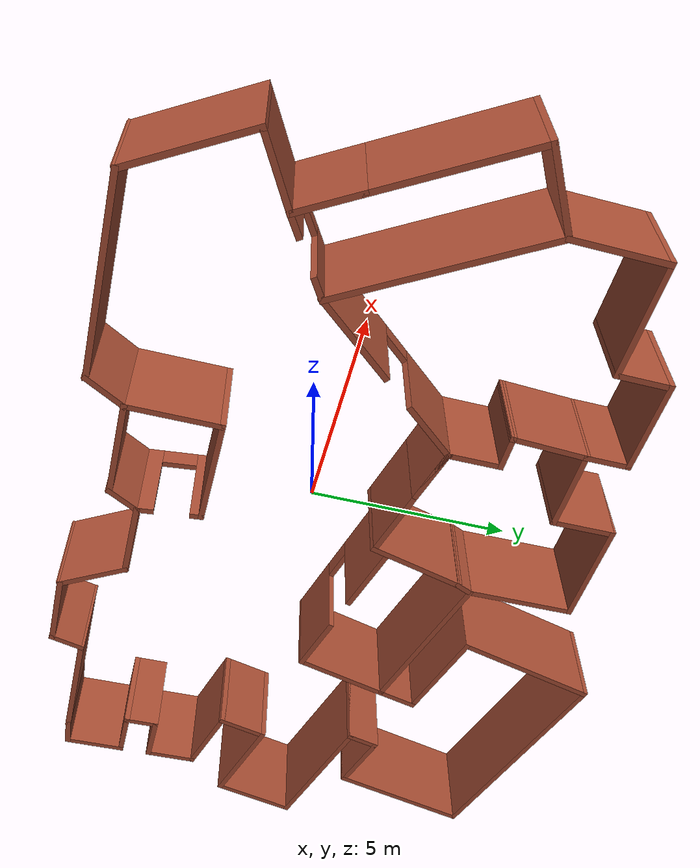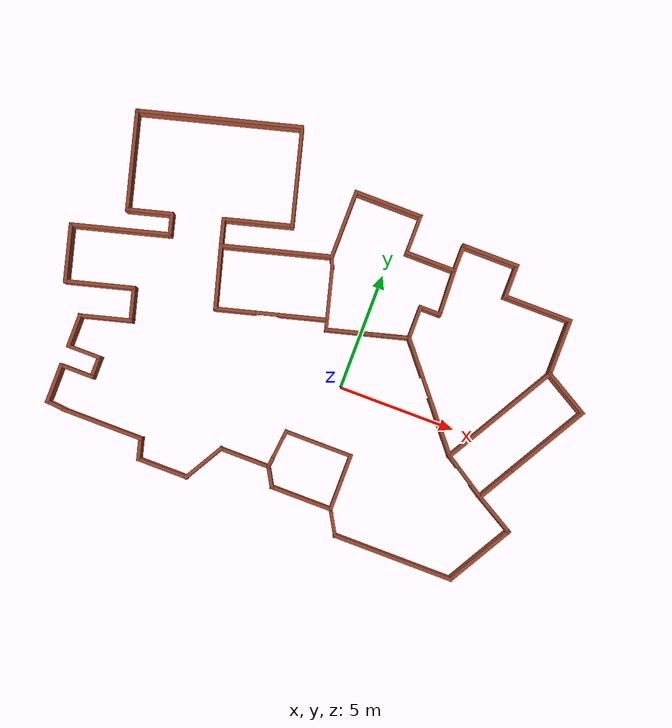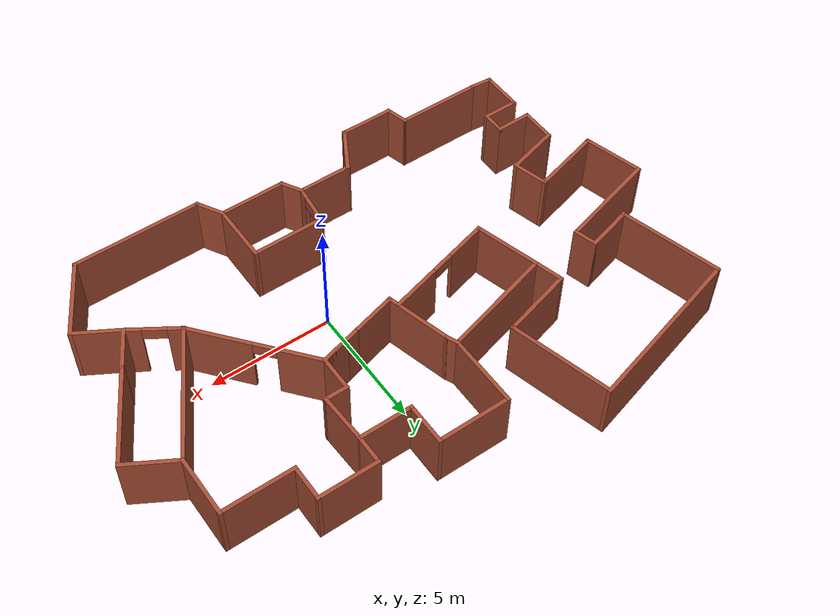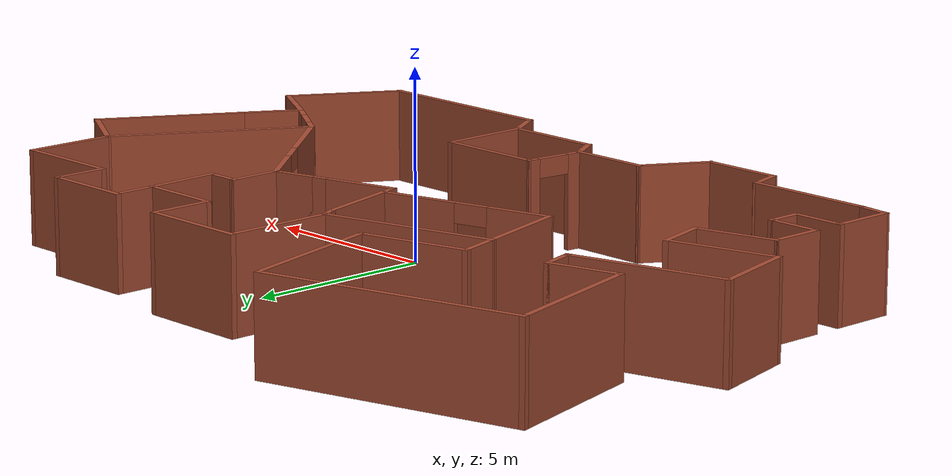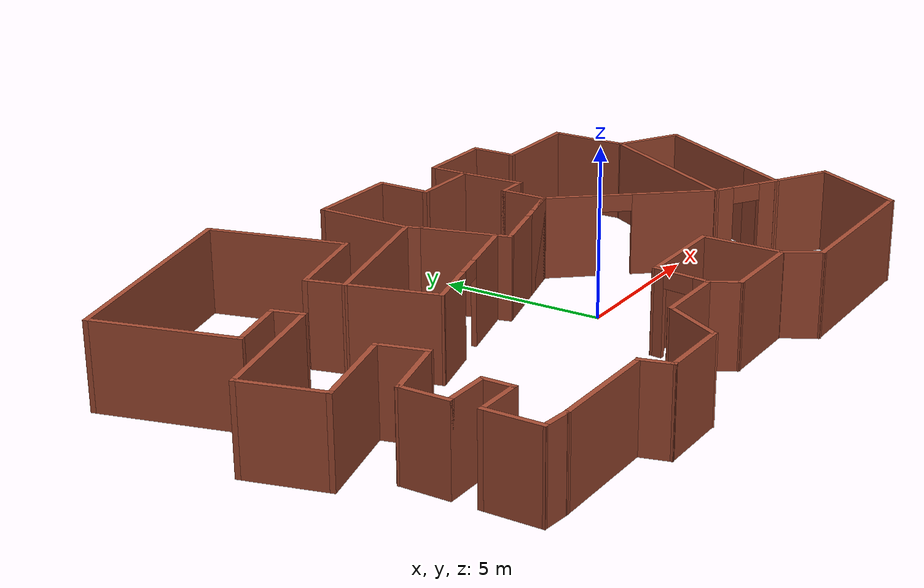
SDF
<?xml version='1.0'?>
<sdf version='1.6'>
  <model name='test_building'>
    <pose frame=''>-1.545 1.82792 0 0 -0 0</pose>
    <link name='Wall_1'>
      <collision name='Wall_1_Collision'>
        <geometry>
          <box>
            <size>3.5 0.15 2.5</size>
          </box>
        </geometry>
        <pose frame=''>0 0 1.25 0 -0 0</pose>
      </collision>
      <visual name='Wall_1_Visual'>
        <pose frame=''>0 0 1.25 0 -0 0</pose>
        <geometry>
          <box>
            <size>3.5 0.15 2.5</size>
          </box>
        </geometry>
        <material>
          <script>
            <uri>file://media/materials/scripts/gazebo.material</uri>
            <name>Gazebo/Bricks</name>
          </script>
          <ambient>1 1 1 1</ambient>
        </material>
      </visual>
      <pose frame=''>-7.11632 -6.73676 0 0 -0 0</pose>
    </link>
    <link name='Wall_10'>
      <collision name='Wall_10_Collision'>
        <geometry>
          <box>
            <size>3.25 0.15 2.5</size>
          </box>
        </geometry>
        <pose frame=''>0 0 1.25 0 -0 0</pose>
      </collision>
      <visual name='Wall_10_Visual'>
        <pose frame=''>0 0 1.25 0 -0 0</pose>
        <geometry>
          <box>
            <size>3.25 0.15 2.5</size>
          </box>
        </geometry>
        <material>
          <script>
            <uri>file://media/materials/scripts/gazebo.material</uri>
            <name>Gazebo/Bricks</name>
          </script>
          <ambient>1 1 1 1</ambient>
        </material>
      </visual>
      <pose frame=''>9.35368 -6.30206 0 0 -0 1.0472</pose>
    </link>
    <link name='Wall_11'>
      <collision name='Wall_11_Collision'>
        <geometry>
          <box>
            <size>2 0.15 2.5</size>
          </box>
        </geometry>
        <pose frame=''>0 0 1.25 0 -0 0</pose>
      </collision>
      <visual name='Wall_11_Visual'>
        <pose frame=''>0 0 1.25 0 -0 0</pose>
        <geometry>
          <box>
            <size>2 0.15 2.5</size>
          </box>
        </geometry>
        <material>
          <script>
            <uri>file://media/materials/scripts/gazebo.material</uri>
            <name>Gazebo/Bricks</name>
          </script>
          <ambient>1 1 1 1</ambient>
        </material>
      </visual>
      <pose frame=''>9.3276 -4.49722 0 0 -0 2.61799</pose>
    </link>
    <link name='Wall_12'>
      <collision name='Wall_12_Collision'>
        <geometry>
          <box>
            <size>1.75 0.15 2.5</size>
          </box>
        </geometry>
        <pose frame=''>0 0 1.25 0 -0 0</pose>
      </collision>
      <visual name='Wall_12_Visual'>
        <pose frame=''>0 0 1.25 0 -0 0</pose>
        <geometry>
          <box>
            <size>1.75 0.15 2.5</size>
          </box>
        </geometry>
        <material>
          <script>
            <uri>file://media/materials/scripts/gazebo.material</uri>
            <name>Gazebo/Bricks</name>
          </script>
          <ambient>1 1 1 1</ambient>
        </material>
      </visual>
      <pose frame=''>8.92653 -3.3419 0 0 -0 1.0472</pose>
    </link>
    <link name='Wall_13'>
      <collision name='Wall_13_Collision'>
        <geometry>
          <box>
            <size>4 0.15 2.5</size>
          </box>
        </geometry>
        <pose frame=''>0 0 1.25 0 -0 0</pose>
      </collision>
      <visual name='Wall_13_Visual'>
        <pose frame=''>0 0 1.25 0 -0 0</pose>
        <geometry>
          <box>
            <size>4 0.15 2.5</size>
          </box>
        </geometry>
        <material>
          <script>
            <uri>file://media/materials/scripts/gazebo.material</uri>
            <name>Gazebo/Bricks</name>
          </script>
          <ambient>1 1 1 1</ambient>
        </material>
      </visual>
      <pose frame=''>10.289 -0.981983 0 0 -0 1.0472</pose>
    </link>
    <link name='Wall_14'>
      <collision name='Wall_14_Collision'>
        <geometry>
          <box>
            <size>2.25 0.15 2.5</size>
          </box>
        </geometry>
        <pose frame=''>0 0 1.25 0 -0 0</pose>
      </collision>
      <visual name='Wall_14_Visual'>
        <pose frame=''>0 0 1.25 0 -0 0</pose>
        <geometry>
          <box>
            <size>2.25 0.15 2.5</size>
          </box>
        </geometry>
        <material>
          <script>
            <uri>file://media/materials/scripts/gazebo.material</uri>
            <name>Gazebo/Bricks</name>
          </script>
          <ambient>1 1 1 1</ambient>
        </material>
      </visual>
      <pose frame=''>10.3422 1.21012 0 0 -0 2.61799</pose>
    </link>
    <link name='Wall_15'>
      <collision name='Wall_15_Collision'>
        <geometry>
          <box>
            <size>2.5 0.15 2.5</size>
          </box>
        </geometry>
        <pose frame=''>0 0 1.25 0 -0 0</pose>
      </collision>
      <visual name='Wall_15_Visual'>
        <pose frame=''>0 0 1.25 0 -0 0</pose>
        <geometry>
          <box>
            <size>2.5 0.15 2.5</size>
          </box>
        </geometry>
        <material>
          <script>
            <uri>file://media/materials/scripts/gazebo.material</uri>
            <name>Gazebo/Bricks</name>
          </script>
          <ambient>1 1 1 1</ambient>
        </material>
      </visual>
      <pose frame=''>9.43288 2.91012 0 0 -0 1.5708</pose>
    </link>
    <link name='Wall_16'>
      <collision name='Wall_16_Collision'>
        <geometry>
          <box>
            <size>3 0.15 2.5</size>
          </box>
        </geometry>
        <pose frame=''>0 0 1.25 0 -0 0</pose>
      </collision>
      <visual name='Wall_16_Visual'>
        <pose frame=''>0 0 1.25 0 -0 0</pose>
        <geometry>
          <box>
            <size>3 0.15 2.5</size>
          </box>
        </geometry>
        <material>
          <script>
            <uri>file://media/materials/scripts/gazebo.material</uri>
            <name>Gazebo/Bricks</name>
          </script>
          <ambient>1 1 1 1</ambient>
        </material>
      </visual>
      <pose frame=''>8.00788 4.08512 0 0 -0 3.14159</pose>
    </link>
    <link name='Wall_17'>
      <collision name='Wall_17_Collision'>
        <geometry>
          <box>
            <size>1.5 0.15 2.5</size>
          </box>
        </geometry>
        <pose frame=''>0 0 1.25 0 -0 0</pose>
      </collision>
      <visual name='Wall_17_Visual'>
        <pose frame=''>0 0 1.25 0 -0 0</pose>
        <geometry>
          <box>
            <size>1.5 0.15 2.5</size>
          </box>
        </geometry>
        <material>
          <script>
            <uri>file://media/materials/scripts/gazebo.material</uri>
            <name>Gazebo/Bricks</name>
          </script>
          <ambient>1 1 1 1</ambient>
        </material>
      </visual>
      <pose frame=''>6.58288 4.76012 0 0 -0 1.5708</pose>
    </link>
    <link name='Wall_18'>
      <collision name='Wall_18_Collision'>
        <geometry>
          <box>
            <size>2.5 0.15 2.5</size>
          </box>
        </geometry>
        <pose frame=''>0 0 1.25 0 -0 0</pose>
      </collision>
      <visual name='Wall_18_Visual'>
        <pose frame=''>0 0 1.25 0 -0 0</pose>
        <geometry>
          <box>
            <size>2.5 0.15 2.5</size>
          </box>
        </geometry>
        <material>
          <script>
            <uri>file://media/materials/scripts/gazebo.material</uri>
            <name>Gazebo/Bricks</name>
          </script>
          <ambient>1 1 1 1</ambient>
        </material>
      </visual>
      <pose frame=''>5.40788 5.43512 0 0 -0 3.14159</pose>
    </link>
    <link name='Wall_19'>
      <collision name='Wall_19_Collision'>
        <geometry>
          <box>
            <size>1.25 0.15 2.5</size>
          </box>
        </geometry>
        <pose frame=''>0 0 1.25 0 -0 0</pose>
      </collision>
      <visual name='Wall_19_Visual'>
        <pose frame=''>0 0 1.25 0 -0 0</pose>
        <geometry>
          <box>
            <size>1.25 0.15 2.5</size>
          </box>
        </geometry>
        <material>
          <script>
            <uri>file://media/materials/scripts/gazebo.material</uri>
            <name>Gazebo/Bricks</name>
          </script>
          <ambient>1 1 1 1</ambient>
        </material>
      </visual>
      <pose frame=''>4.23288 4.88512 0 0 0 -1.5708</pose>
    </link>
    <link name='Wall_2'>
      <collision name='Wall_2_Collision'>
        <geometry>
          <box>
            <size>1 0.15 2.5</size>
          </box>
        </geometry>
        <pose frame=''>0 0 1.25 0 -0 0</pose>
      </collision>
      <visual name='Wall_2_Visual'>
        <pose frame=''>0 0 1.25 0 -0 0</pose>
        <geometry>
          <box>
            <size>1 0.15 2.5</size>
          </box>
        </geometry>
        <material>
          <script>
            <uri>file://media/materials/scripts/gazebo.material</uri>
            <name>Gazebo/Bricks</name>
          </script>
          <ambient>1 1 1 1</ambient>
        </material>
      </visual>
      <pose frame=''>-5.33132 -7.14728 0 0 0 -1.309</pose>
    </link>
    <link name='Wall_20'>
      <collision name='Wall_20_Collision'>
        <geometry>
          <box>
            <size>2.25 0.15 2.5</size>
          </box>
        </geometry>
        <pose frame=''>0 0 1.25 0 -0 0</pose>
      </collision>
      <visual name='Wall_20_Visual'>
        <pose frame=''>0 0 1.25 0 -0 0</pose>
        <geometry>
          <box>
            <size>2.25 0.15 2.5</size>
          </box>
        </geometry>
        <material>
          <script>
            <uri>file://media/materials/scripts/gazebo.material</uri>
            <name>Gazebo/Bricks</name>
          </script>
          <ambient>1 1 1 1</ambient>
        </material>
      </visual>
      <pose frame=''>3.18288 4.33512 0 0 -0 3.14159</pose>
    </link>
    <link name='Wall_21'>
      <collision name='Wall_21_Collision'>
        <geometry>
          <box>
            <size>1.75 0.15 2.5</size>
          </box>
        </geometry>
        <pose frame=''>0 0 1.25 0 -0 0</pose>
      </collision>
      <visual name='Wall_21_Visual'>
        <pose frame=''>0 0 1.25 0 -0 0</pose>
        <geometry>
          <box>
            <size>1.75 0.15 2.5</size>
          </box>
        </geometry>
        <material>
          <script>
            <uri>file://media/materials/scripts/gazebo.material</uri>
            <name>Gazebo/Bricks</name>
          </script>
          <ambient>1 1 1 1</ambient>
        </material>
      </visual>
      <pose frame=''>2.13288 5.13512 0 0 -0 1.5708</pose>
    </link>
    <link name='Wall_22'>
      <collision name='Wall_22_Collision'>
        <geometry>
          <box>
            <size>3 0.15 2.5</size>
          </box>
        </geometry>
        <pose frame=''>0 0 1.25 0 -0 0</pose>
      </collision>
      <visual name='Wall_22_Visual'>
        <pose frame=''>0 0 1.25 0 -0 0</pose>
        <geometry>
          <box>
            <size>3 0.15 2.5</size>
          </box>
        </geometry>
        <material>
          <script>
            <uri>file://media/materials/scripts/gazebo.material</uri>
            <name>Gazebo/Bricks</name>
          </script>
          <ambient>1 1 1 1</ambient>
        </material>
      </visual>
      <pose frame=''>0.707876 5.93512 0 0 -0 3.14159</pose>
    </link>
    <link name='Wall_23'>
      <collision name='Wall_23_Collision'>
        <geometry>
          <box>
            <size>3 0.15 2.5</size>
          </box>
        </geometry>
        <pose frame=''>0 0 1.25 0 -0 0</pose>
      </collision>
      <visual name='Wall_23_Visual'>
        <pose frame=''>0 0 1.25 0 -0 0</pose>
        <geometry>
          <box>
            <size>3 0.15 2.5</size>
          </box>
        </geometry>
        <material>
          <script>
            <uri>file://media/materials/scripts/gazebo.material</uri>
            <name>Gazebo/Bricks</name>
          </script>
          <ambient>1 1 1 1</ambient>
        </material>
      </visual>
      <pose frame=''>-0.717124 4.51012 0 0 0 -1.5708</pose>
    </link>
    <link name='Wall_24'>
      <collision name='Wall_24_Collision'>
        <geometry>
          <box>
            <size>4.75 0.15 2.5</size>
          </box>
        </geometry>
        <pose frame=''>0 0 1.25 0 -0 0</pose>
      </collision>
      <visual name='Wall_24_Visual'>
        <pose frame=''>0 0 1.25 0 -0 0</pose>
        <geometry>
          <box>
            <size>4.75 0.15 2.5</size>
          </box>
        </geometry>
        <material>
          <script>
            <uri>file://media/materials/scripts/gazebo.material</uri>
            <name>Gazebo/Bricks</name>
          </script>
          <ambient>1 1 1 1</ambient>
        </material>
      </visual>
      <pose frame=''>-2.93875 2.48983 0 0 0 -2.87979</pose>
    </link>
    <link name='Wall_25'>
      <collision name='Wall_25_Collision'>
        <geometry>
          <box>
            <size>1.25 0.15 2.5</size>
          </box>
        </geometry>
        <pose frame=''>0 0 1.25 0 -0 0</pose>
      </collision>
      <visual name='Wall_25_Visual'>
        <pose frame=''>0 0 1.25 0 -0 0</pose>
        <geometry>
          <box>
            <size>1.25 0.15 2.5</size>
          </box>
        </geometry>
        <material>
          <script>
            <uri>file://media/materials/scripts/gazebo.material</uri>
            <name>Gazebo/Bricks</name>
          </script>
          <ambient>1 1 1 1</ambient>
        </material>
      </visual>
      <pose frame=''>-5.30273 2.42581 0 0 -0 1.8326</pose>
    </link>
    <link name='Wall_26'>
      <collision name='Wall_26_Collision'>
        <geometry>
          <box>
            <size>3 0.15 2.5</size>
          </box>
        </geometry>
        <pose frame=''>0 0 1.25 0 -0 0</pose>
      </collision>
      <visual name='Wall_26_Visual'>
        <pose frame=''>0 0 1.25 0 -0 0</pose>
        <geometry>
          <box>
            <size>3 0.15 2.5</size>
          </box>
        </geometry>
        <material>
          <script>
            <uri>file://media/materials/scripts/gazebo.material</uri>
            <name>Gazebo/Bricks</name>
          </script>
          <ambient>1 1 1 1</ambient>
        </material>
      </visual>
      <pose frame=''>-4.06864 3.32588 0 0 -0 0.261799</pose>
    </link>
    <link name='Wall_27'>
      <collision name='Wall_27_Collision'>
        <geometry>
          <box>
            <size>4.25 0.15 2.5</size>
          </box>
        </geometry>
        <pose frame=''>0 0 1.25 0 -0 0</pose>
      </collision>
      <visual name='Wall_27_Visual'>
        <pose frame=''>0 0 1.25 0 -0 0</pose>
        <geometry>
          <box>
            <size>4.25 0.15 2.5</size>
          </box>
        </geometry>
        <material>
          <script>
            <uri>file://media/materials/scripts/gazebo.material</uri>
            <name>Gazebo/Bricks</name>
          </script>
          <ambient>1 1 1 1</ambient>
        </material>
      </visual>
      <pose frame=''>-3.22277 5.67485 0 0 -0 1.8326</pose>
    </link>
    <link name='Wall_28'>
      <collision name='Wall_28_Collision'>
        <geometry>
          <box>
            <size>7 0.15 2.5</size>
          </box>
        </geometry>
        <pose frame=''>0 0 1.25 0 -0 0</pose>
      </collision>
      <visual name='Wall_28_Visual'>
        <pose frame=''>0 0 1.25 0 -0 0</pose>
        <geometry>
          <box>
            <size>7 0.15 2.5</size>
          </box>
        </geometry>
        <material>
          <script>
            <uri>file://media/materials/scripts/gazebo.material</uri>
            <name>Gazebo/Bricks</name>
          </script>
          <ambient>1 1 1 1</ambient>
        </material>
      </visual>
      <pose frame=''>-7.06165 6.76854 0 0 0 -2.87979</pose>
    </link>
    <link name='Wall_29'>
      <collision name='Wall_29_Collision'>
        <geometry>
          <box>
            <size>4.25 0.15 2.5</size>
          </box>
        </geometry>
        <pose frame=''>0 0 1.25 0 -0 0</pose>
      </collision>
      <visual name='Wall_29_Visual'>
        <pose frame=''>0 0 1.25 0 -0 0</pose>
        <geometry>
          <box>
            <size>4.25 0.15 2.5</size>
          </box>
        </geometry>
        <material>
          <script>
            <uri>file://media/materials/scripts/gazebo.material</uri>
            <name>Gazebo/Bricks</name>
          </script>
          <ambient>1 1 1 1</ambient>
        </material>
      </visual>
      <pose frame=''>-9.83937 3.90194 0 0 0 -1.309</pose>
    </link>
    <link name='Wall_3'>
      <collision name='Wall_3_Collision'>
        <geometry>
          <box>
            <size>2.25 0.15 2.5</size>
          </box>
        </geometry>
        <pose frame=''>0 0 1.25 0 -0 0</pose>
      </collision>
      <visual name='Wall_3_Visual'>
        <pose frame=''>0 0 1.25 0 -0 0</pose>
        <geometry>
          <box>
            <size>2.25 0.15 2.5</size>
          </box>
        </geometry>
        <material>
          <script>
            <uri>file://media/materials/scripts/gazebo.material</uri>
            <name>Gazebo/Bricks</name>
          </script>
          <ambient>1 1 1 1</ambient>
        </material>
      </visual>
      <pose frame=''>-4.17132 -7.5578 0 0 -0 0</pose>
    </link>
    <link name='Wall_30'>
      <collision name='Wall_30_Collision'>
        <geometry>
          <box>
            <size>2 0.15 2.5</size>
          </box>
        </geometry>
        <pose frame=''>0 0 1.25 0 -0 0</pose>
      </collision>
      <visual name='Wall_30_Visual'>
        <pose frame=''>0 0 1.25 0 -0 0</pose>
        <geometry>
          <box>
            <size>2 0.15 2.5</size>
          </box>
        </geometry>
        <material>
          <script>
            <uri>file://media/materials/scripts/gazebo.material</uri>
            <name>Gazebo/Bricks</name>
          </script>
          <ambient>1 1 1 1</ambient>
        </material>
      </visual>
      <pose frame=''>-8.41531 2.1612 0 0 -0 0.261799</pose>
    </link>
    <link name='Wall_31'>
      <collision name='Wall_31_Collision'>
        <geometry>
          <box>
            <size>1 0.15 2.5</size>
          </box>
        </geometry>
        <pose frame=''>0 0 1.25 0 -0 0</pose>
      </collision>
      <visual name='Wall_31_Visual'>
        <pose frame=''>0 0 1.25 0 -0 0</pose>
        <geometry>
          <box>
            <size>1 0.15 2.5</size>
          </box>
        </geometry>
        <material>
          <script>
            <uri>file://media/materials/scripts/gazebo.material</uri>
            <name>Gazebo/Bricks</name>
          </script>
          <ambient>1 1 1 1</ambient>
        </material>
      </visual>
      <pose frame=''>-7.41183 1.99009 0 0 0 -1.309</pose>
    </link>
    <link name='Wall_32'>
      <collision name='Wall_32_Collision'>
        <geometry>
          <box>
            <size>4.25 0.15 2.5</size>
          </box>
        </geometry>
        <pose frame=''>0 0 1.25 0 -0 0</pose>
      </collision>
      <visual name='Wall_32_Visual'>
        <pose frame=''>0 0 1.25 0 -0 0</pose>
        <geometry>
          <box>
            <size>4.25 0.15 2.5</size>
          </box>
        </geometry>
        <material>
          <script>
            <uri>file://media/materials/scripts/gazebo.material</uri>
            <name>Gazebo/Bricks</name>
          </script>
          <ambient>1 1 1 1</ambient>
        </material>
      </visual>
      <pose frame=''>-9.28198 1.04899 0 0 0 -2.87979</pose>
    </link>
    <link name='Wall_33'>
      <collision name='Wall_33_Collision'>
        <geometry>
          <box>
            <size>2.5 0.15 2.5</size>
          </box>
        </geometry>
        <pose frame=''>0 0 1.25 0 -0 0</pose>
      </collision>
      <visual name='Wall_33_Visual'>
        <pose frame=''>0 0 1.25 0 -0 0</pose>
        <geometry>
          <box>
            <size>2.5 0.15 2.5</size>
          </box>
        </geometry>
        <material>
          <script>
            <uri>file://media/materials/scripts/gazebo.material</uri>
            <name>Gazebo/Bricks</name>
          </script>
          <ambient>1 1 1 1</ambient>
        </material>
      </visual>
      <pose frame=''>-10.958 -0.616552 0 0 0 -1.309</pose>
    </link>
    <link name='Wall_34'>
      <collision name='Wall_34_Collision'>
        <geometry>
          <box>
            <size>3 0.15 2.5</size>
          </box>
        </geometry>
        <pose frame=''>0 0 1.25 0 -0 0</pose>
      </collision>
      <visual name='Wall_34_Visual'>
        <pose frame=''>0 0 1.25 0 -0 0</pose>
        <geometry>
          <box>
            <size>3 0.15 2.5</size>
          </box>
        </geometry>
        <material>
          <script>
            <uri>file://media/materials/scripts/gazebo.material</uri>
            <name>Gazebo/Bricks</name>
          </script>
          <ambient>1 1 1 1</ambient>
        </material>
      </visual>
      <pose frame=''>-9.27745 -1.3827 0 0 -0 0.261799</pose>
    </link>
    <link name='Wall_35'>
      <collision name='Wall_35_Collision'>
        <geometry>
          <box>
            <size>1.5 0.15 2.5</size>
          </box>
        </geometry>
        <pose frame=''>0 0 1.25 0 -0 0</pose>
      </collision>
      <visual name='Wall_35_Visual'>
        <pose frame=''>0 0 1.25 0 -0 0</pose>
        <geometry>
          <box>
            <size>1.5 0.15 2.5</size>
          </box>
        </geometry>
        <material>
          <script>
            <uri>file://media/materials/scripts/gazebo.material</uri>
            <name>Gazebo/Bricks</name>
          </script>
          <ambient>1 0.764706 0.305882 1</ambient>
        </material>
      </visual>
      <pose frame=''>-7.72631 -1.66588 0 0 0 -1.309</pose>
    </link>
    <link name='Wall_36'>
      <collision name='Wall_36_Collision'>
        <geometry>
          <box>
            <size>2.25 0.15 2.5</size>
          </box>
        </geometry>
        <pose frame=''>0 0 1.25 0 -0 0</pose>
      </collision>
      <visual name='Wall_36_Visual'>
        <pose frame=''>0 0 1.25 0 -0 0</pose>
        <geometry>
          <box>
            <size>2.25 0.15 2.5</size>
          </box>
        </geometry>
        <material>
          <script>
            <uri>file://media/materials/scripts/gazebo.material</uri>
            <name>Gazebo/Bricks</name>
          </script>
          <ambient>1 1 1 1</ambient>
        </material>
      </visual>
      <pose frame=''>-8.56583 -2.58964 0 0 0 -2.87979</pose>
    </link>
    <link name='Wall_37'>
      <collision name='Wall_37_Collision'>
        <geometry>
          <box>
            <size>1.5 0.15 2.5</size>
          </box>
        </geometry>
        <pose frame=''>0 0 1.25 0 -0 0</pose>
      </collision>
      <visual name='Wall_37_Visual'>
        <pose frame=''>0 0 1.25 0 -0 0</pose>
        <geometry>
          <box>
            <size>1.5 0.15 2.5</size>
          </box>
        </geometry>
        <material>
          <script>
            <uri>file://media/materials/scripts/gazebo.material</uri>
            <name>Gazebo/Bricks</name>
          </script>
          <ambient>1 1 1 1</ambient>
        </material>
      </visual>
      <pose frame=''>-9.58005 -3.5364 0 0 0 -1.5708</pose>
    </link>
    <link name='Wall_38'>
      <collision name='Wall_38_Collision'>
        <geometry>
          <box>
            <size>1.5 0.15 2.5</size>
          </box>
        </geometry>
        <pose frame=''>0 0 1.25 0 -0 0</pose>
      </collision>
      <visual name='Wall_38_Visual'>
        <pose frame=''>0 0 1.25 0 -0 0</pose>
        <geometry>
          <box>
            <size>1.5 0.15 2.5</size>
          </box>
        </geometry>
        <material>
          <script>
            <uri>file://media/materials/scripts/gazebo.material</uri>
            <name>Gazebo/Bricks</name>
          </script>
          <ambient>1 1 1 1</ambient>
        </material>
      </visual>
      <pose frame=''>-8.90505 -4.2114 0 0 -0 0</pose>
    </link>
    <link name='Wall_39'>
      <collision name='Wall_39_Collision'>
        <geometry>
          <box>
            <size>1 0.15 2.5</size>
          </box>
        </geometry>
        <pose frame=''>0 0 1.25 0 -0 0</pose>
      </collision>
      <visual name='Wall_39_Visual'>
        <pose frame=''>0 0 1.25 0 -0 0</pose>
        <geometry>
          <box>
            <size>1 0.15 2.5</size>
          </box>
        </geometry>
        <material>
          <script>
            <uri>file://media/materials/scripts/gazebo.material</uri>
            <name>Gazebo/Bricks</name>
          </script>
          <ambient>1 1 1 1</ambient>
        </material>
      </visual>
      <pose frame=''>-8.23005 -4.6364 0 0 0 -1.5708</pose>
    </link>
    <link name='Wall_4'>
      <collision name='Wall_4_Collision'>
        <geometry>
          <box>
            <size>2 0.15 2.5</size>
          </box>
        </geometry>
        <pose frame=''>0 0 1.25 0 -0 0</pose>
      </collision>
      <visual name='Wall_4_Visual'>
        <pose frame=''>0 0 1.25 0 -0 0</pose>
        <geometry>
          <box>
            <size>2 0.15 2.5</size>
          </box>
        </geometry>
        <material>
          <script>
            <uri>file://media/materials/scripts/gazebo.material</uri>
            <name>Gazebo/Bricks</name>
          </script>
          <ambient>1 1 1 1</ambient>
        </material>
      </visual>
      <pose frame=''>-2.65882 -6.75673 0 0 -0 1.0472</pose>
    </link>
    <link name='Wall_40'>
      <collision name='Wall_40_Collision'>
        <geometry>
          <box>
            <size>1.5 0.15 2.5</size>
          </box>
        </geometry>
        <pose frame=''>0 0 1.25 0 -0 0</pose>
      </collision>
      <visual name='Wall_40_Visual'>
        <pose frame=''>0 0 1.25 0 -0 0</pose>
        <geometry>
          <box>
            <size>1.5 0.15 2.5</size>
          </box>
        </geometry>
        <material>
          <script>
            <uri>file://media/materials/scripts/gazebo.material</uri>
            <name>Gazebo/Bricks</name>
          </script>
          <ambient>1 1 1 1</ambient>
        </material>
      </visual>
      <pose frame=''>-8.90505 -5.0614 0 0 -0 3.14159</pose>
    </link>
    <link name='Wall_41'>
      <collision name='Wall_41_Collision'>
        <geometry>
          <box>
            <size>1.75 0.15 2.5</size>
          </box>
        </geometry>
        <pose frame=''>0 0 1.25 0 -0 0</pose>
      </collision>
      <visual name='Wall_41_Visual'>
        <pose frame=''>0 0 1.25 0 -0 0</pose>
        <geometry>
          <box>
            <size>1.75 0.15 2.5</size>
          </box>
        </geometry>
        <material>
          <script>
            <uri>file://media/materials/scripts/gazebo.material</uri>
            <name>Gazebo/Bricks</name>
          </script>
          <ambient>1 1 1 1</ambient>
        </material>
      </visual>
      <pose frame=''>-9.58005 -5.8614 0 0 0 -1.5708</pose>
    </link>
    <link name='Wall_42'>
      <collision name='Wall_42_Collision'>
        <geometry>
          <box>
            <size>0.942321 0.15 2.5</size>
          </box>
        </geometry>
        <pose frame=''>0 0 1.25 0 -0 0</pose>
      </collision>
      <visual name='Wall_42_Visual'>
        <pose frame=''>0 0 1.25 0 -0 0</pose>
        <geometry>
          <box>
            <size>0.942321 0.15 2.5</size>
          </box>
        </geometry>
        <material>
          <script>
            <uri>file://media/materials/scripts/gazebo.material</uri>
            <name>Gazebo/Bricks</name>
          </script>
          <ambient>1 1 1 1</ambient>
        </material>
      </visual>
      <pose frame=''>-9.18568 -6.69908 0 0 0 -0.095258</pose>
    </link>
    <link name='Wall_44'>
      <collision name='Wall_44_Collision'>
        <geometry>
          <box>
            <size>2.75 0.15 2.5</size>
          </box>
        </geometry>
        <pose frame=''>0 0 1.25 0 -0 0</pose>
      </collision>
      <visual name='Wall_44_Visual'>
        <pose frame=''>0 0 1.25 0 -0 0</pose>
        <geometry>
          <box>
            <size>2.75 0.15 2.5</size>
          </box>
        </geometry>
        <material>
          <script>
            <uri>file://media/materials/scripts/gazebo.material</uri>
            <name>Gazebo/Bricks</name>
          </script>
          <ambient>1 1 1 1</ambient>
        </material>
      </visual>
      <pose frame=''>-0.20626 1.44004 0 0 0 -1.309</pose>
    </link>
    <link name='Wall_45'>
      <collision name='Wall_45_Collision'>
        <geometry>
          <box>
            <size>2 0.15 2.5</size>
          </box>
        </geometry>
        <pose frame=''>0 0 1.25 0 -0 0</pose>
      </collision>
      <visual name='Wall_45_Visual'>
        <pose frame=''>0 0 1.25 0 -0 0</pose>
        <geometry>
          <box>
            <size>2 0.15 2.5</size>
          </box>
        </geometry>
        <material>
          <script>
            <uri>file://media/materials/scripts/gazebo.material</uri>
            <name>Gazebo/Bricks</name>
          </script>
          <ambient>1 1 1 1</ambient>
        </material>
      </visual>
      <pose frame=''>1.02369 0.423747 0 0 -0 0.261799</pose>
    </link>
    <link name='Wall_47'>
      <collision name='Wall_47_Collision'>
        <geometry>
          <box>
            <size>0.576642 0.15 2.5</size>
          </box>
        </geometry>
        <pose frame=''>0 0 1.25 0 -0 0</pose>
      </collision>
      <visual name='Wall_47_Visual'>
        <pose frame=''>0 0 1.25 0 -0 0</pose>
        <geometry>
          <box>
            <size>0.576642 0.15 2.5</size>
          </box>
        </geometry>
        <material>
          <script>
            <uri>file://media/materials/scripts/gazebo.material</uri>
            <name>Gazebo/Bricks</name>
          </script>
          <ambient>1 1 1 1</ambient>
        </material>
      </visual>
      <pose frame=''>-0.629925 2.89043 0 0 -0 1.99191</pose>
    </link>
    <link name='Wall_49'>
      <pose frame=''>2.68991 0.87021 0 0 -0 0.261799</pose>
      <visual name='Wall_49_Visual_0'>
        <pose frame=''>0 0 1.25 0 -0 0</pose>
        <geometry>
          <box>
            <size>1.75 0.15 2.5</size>
          </box>
        </geometry>
        <material>
          <script>
            <uri>file://media/materials/scripts/gazebo.material</uri>
            <name>Gazebo/Bricks</name>
          </script>
          <ambient>1 1 1 1</ambient>
        </material>
      </visual>
      <collision name='Wall_49_Collision_0'>
        <geometry>
          <box>
            <size>1.75 0.15 2.5</size>
          </box>
        </geometry>
        <pose frame=''>0 0 1.25 0 -0 0</pose>
      </collision>
      <visual name='Wall_49_Visual_1'>
        <pose frame=''>0.271545 0 1.25 0 -0 0</pose>
        <geometry>
          <box>
            <size>1.20691 0.15 2.5</size>
          </box>
        </geometry>
        <material>
          <script>
            <uri>file://media/materials/scripts/gazebo.material</uri>
            <name>Gazebo/Bricks</name>
          </script>
          <ambient>1 1 1 1</ambient>
        </material>
      </visual>
      <collision name='Wall_49_Collision_1'>
        <geometry>
          <box>
            <size>1.20691 0.15 2.5</size>
          </box>
        </geometry>
        <pose frame=''>0.271545 0 1.25 0 -0 0</pose>
      </collision>
    </link>
    <link name='Wall_5'>
      <collision name='Wall_5_Collision'>
        <geometry>
          <box>
            <size>2.25 0.15 2.5</size>
          </box>
        </geometry>
        <pose frame=''>0 0 1.25 0 -0 0</pose>
      </collision>
      <visual name='Wall_5_Visual'>
        <pose frame=''>0 0 1.25 0 -0 0</pose>
        <geometry>
          <box>
            <size>2.25 0.15 2.5</size>
          </box>
        </geometry>
        <material>
          <script>
            <uri>file://media/materials/scripts/gazebo.material</uri>
            <name>Gazebo/Bricks</name>
          </script>
          <ambient>1 1 1 1</ambient>
        </material>
      </visual>
      <pose frame=''>-1.14632 -5.95565 0 0 -0 0</pose>
    </link>
    <link name='Wall_50'>
      <collision name='Wall_50_Collision'>
        <geometry>
          <box>
            <size>1.5 0.15 2.5</size>
          </box>
        </geometry>
        <pose frame=''>0 0 1.25 0 -0 0</pose>
      </collision>
      <visual name='Wall_50_Visual'>
        <pose frame=''>0 0 1.25 0 -0 0</pose>
        <geometry>
          <box>
            <size>1.5 0.15 2.5</size>
          </box>
        </geometry>
        <material>
          <script>
            <uri>file://media/materials/scripts/gazebo.material</uri>
            <name>Gazebo/Bricks</name>
          </script>
          <ambient>1 1 1 1</ambient>
        </material>
      </visual>
      <pose frame=''>3.46265 1.75226 0 0 -0 1.5708</pose>
    </link>
    <link name='Wall_51'>
      <collision name='Wall_51_Collision'>
        <geometry>
          <box>
            <size>1 0.15 2.5</size>
          </box>
        </geometry>
        <pose frame=''>0 0 1.25 0 -0 0</pose>
      </collision>
      <visual name='Wall_51_Visual'>
        <pose frame=''>0 0 1.25 0 -0 0</pose>
        <geometry>
          <box>
            <size>1 0.15 2.5</size>
          </box>
        </geometry>
        <material>
          <script>
            <uri>file://media/materials/scripts/gazebo.material</uri>
            <name>Gazebo/Bricks</name>
          </script>
          <ambient>1 1 1 1</ambient>
        </material>
      </visual>
      <pose frame=''>3.88765 2.42726 0 0 -0 0</pose>
    </link>
    <link name='Wall_52'>
      <collision name='Wall_52_Collision'>
        <geometry>
          <box>
            <size>2.05952 0.15 2.5</size>
          </box>
        </geometry>
        <pose frame=''>0 0 1.25 0 -0 0</pose>
      </collision>
      <visual name='Wall_52_Visual'>
        <pose frame=''>0 0 1.25 0 -0 0</pose>
        <geometry>
          <box>
            <size>2.05952 0.15 2.5</size>
          </box>
        </geometry>
        <material>
          <script>
            <uri>file://media/materials/scripts/gazebo.material</uri>
            <name>Gazebo/Bricks</name>
          </script>
          <ambient>1 1 1 1</ambient>
        </material>
      </visual>
      <pose frame=''>4.27276 3.38119 0 0 -0 1.61258</pose>
    </link>
    <link name='Wall_54'>
      <pose frame=''>-2.23514 -0.028311 0 0 0 -2.87979</pose>
      <visual name='Wall_54_Visual_0'>
        <pose frame=''>-1.33104 0 1.25 0 -0 0</pose>
        <geometry>
          <box>
            <size>2.08791 0.15 2.5</size>
          </box>
        </geometry>
        <material>
          <script>
            <uri>file://media/materials/scripts/gazebo.material</uri>
            <name>Gazebo/Bricks</name>
          </script>
          <ambient>1 1 1 1</ambient>
        </material>
      </visual>
      <collision name='Wall_54_Collision_0'>
        <geometry>
          <box>
            <size>2.08791 0.15 2.5</size>
          </box>
        </geometry>
        <pose frame=''>-1.33104 0 1.25 0 -0 0</pose>
      </collision>
      <visual name='Wall_54_Visual_1'>
        <pose frame=''>1.49396 0 1.25 0 -0 0</pose>
        <geometry>
          <box>
            <size>1.76209 0.15 2.5</size>
          </box>
        </geometry>
        <material>
          <script>
            <uri>file://media/materials/scripts/gazebo.material</uri>
            <name>Gazebo/Bricks</name>
          </script>
          <ambient>1 1 1 1</ambient>
        </material>
      </visual>
      <collision name='Wall_54_Collision_1'>
        <geometry>
          <box>
            <size>1.76209 0.15 2.5</size>
          </box>
        </geometry>
        <pose frame=''>1.49396 0 1.25 0 -0 0</pose>
      </collision>
      <visual name='Wall_54_Visual_2'>
        <pose frame=''>0.162912 0 2.25 0 -0 0</pose>
        <geometry>
          <box>
            <size>0.9 0.15 0.5</size>
          </box>
        </geometry>
        <material>
          <script>
            <uri>file://media/materials/scripts/gazebo.material</uri>
            <name>Gazebo/Bricks</name>
          </script>
          <ambient>1 1 1 1</ambient>
        </material>
      </visual>
      <collision name='Wall_54_Collision_2'>
        <geometry>
          <box>
            <size>0.9 0.15 0.5</size>
          </box>
        </geometry>
        <pose frame=''>0.162912 0 2.25 0 -0 0</pose>
      </collision>
    </link>
    <link name='Wall_55'>
      <collision name='Wall_55_Collision'>
        <geometry>
          <box>
            <size>2.7646 0.15 2.5</size>
          </box>
        </geometry>
        <pose frame=''>0 0 1.25 0 -0 0</pose>
      </collision>
      <visual name='Wall_55_Visual'>
        <pose frame=''>0 0 1.25 0 -0 0</pose>
        <geometry>
          <box>
            <size>2.7646 0.15 2.5</size>
          </box>
        </geometry>
        <material>
          <script>
            <uri>file://media/materials/scripts/gazebo.material</uri>
            <name>Gazebo/Bricks</name>
          </script>
          <ambient>1 1 1 1</ambient>
        </material>
      </visual>
      <pose frame=''>-4.80858 0.635476 0 0 -0 1.84327</pose>
    </link>
    <link name='Wall_57'>
      <collision name='Wall_57_Collision'>
        <geometry>
          <box>
            <size>5.5 0.15 2.5</size>
          </box>
        </geometry>
        <pose frame=''>0 0 1.25 0 -0 0</pose>
      </collision>
      <visual name='Wall_57_Visual'>
        <pose frame=''>0 0 1.25 0 -0 0</pose>
        <geometry>
          <box>
            <size>5.5 0.15 2.5</size>
          </box>
        </geometry>
        <material>
          <script>
            <uri>file://media/materials/scripts/gazebo.material</uri>
            <name>Gazebo/Bricks</name>
          </script>
          <ambient>1 1 1 1</ambient>
        </material>
      </visual>
      <pose frame=''>8.09538 -0.581502 0 0 0 -2.0944</pose>
    </link>
    <link name='Wall_58'>
      <pose frame=''>5.11026 -0.910428 0 0 -0 2.26292</pose>
      <visual name='Wall_58_Visual_0'>
        <pose frame=''>-1.34859 0 1.25 0 -0 0</pose>
        <geometry>
          <box>
            <size>2.61636 0.15 2.5</size>
          </box>
        </geometry>
        <material>
          <script>
            <uri>file://media/materials/scripts/gazebo.material</uri>
            <name>Gazebo/Bricks</name>
          </script>
          <ambient>1 1 1 1</ambient>
        </material>
      </visual>
      <collision name='Wall_58_Collision_0'>
        <geometry>
          <box>
            <size>2.61636 0.15 2.5</size>
          </box>
        </geometry>
        <pose frame=''>-1.34859 0 1.25 0 -0 0</pose>
      </collision>
      <visual name='Wall_58_Visual_1'>
        <pose frame=''>1.75818 0 1.25 0 -0 0</pose>
        <geometry>
          <box>
            <size>1.79718 0.15 2.5</size>
          </box>
        </geometry>
        <material>
          <script>
            <uri>file://media/materials/scripts/gazebo.material</uri>
            <name>Gazebo/Bricks</name>
          </script>
          <ambient>1 1 1 1</ambient>
        </material>
      </visual>
      <collision name='Wall_58_Collision_1'>
        <geometry>
          <box>
            <size>1.79718 0.15 2.5</size>
          </box>
        </geometry>
        <pose frame=''>1.75818 0 1.25 0 -0 0</pose>
      </collision>
      <visual name='Wall_58_Visual_2'>
        <pose frame=''>0.409591 0 2.25 0 -0 0</pose>
        <geometry>
          <box>
            <size>0.9 0.15 0.5</size>
          </box>
        </geometry>
        <material>
          <script>
            <uri>file://media/materials/scripts/gazebo.material</uri>
            <name>Gazebo/Bricks</name>
          </script>
          <ambient>1 1 1 1</ambient>
        </material>
      </visual>
      <collision name='Wall_58_Collision_2'>
        <geometry>
          <box>
            <size>0.9 0.15 0.5</size>
          </box>
        </geometry>
        <pose frame=''>0.409591 0 2.25 0 -0 0</pose>
      </collision>
    </link>
    <link name='Wall_6'>
      <collision name='Wall_6_Collision'>
        <geometry>
          <box>
            <size>1 0.15 2.5</size>
          </box>
        </geometry>
        <pose frame=''>0 0 1.25 0 -0 0</pose>
      </collision>
      <visual name='Wall_6_Visual'>
        <pose frame=''>0 0 1.25 0 -0 0</pose>
        <geometry>
          <box>
            <size>1 0.15 2.5</size>
          </box>
        </geometry>
        <material>
          <script>
            <uri>file://media/materials/scripts/gazebo.material</uri>
            <name>Gazebo/Bricks</name>
          </script>
          <ambient>1 1 1 1</ambient>
        </material>
      </visual>
      <pose frame=''>0.116176 -6.32371 0 0 0 -1.0472</pose>
    </link>
    <link name='Wall_60'>
      <collision name='Wall_60_Collision'>
        <geometry>
          <box>
            <size>2.5 0.15 2.5</size>
          </box>
        </geometry>
        <pose frame=''>0 0 1.25 0 -0 0</pose>
      </collision>
      <visual name='Wall_60_Visual'>
        <pose frame=''>0 0 1.25 0 -0 0</pose>
        <geometry>
          <box>
            <size>2.5 0.15 2.5</size>
          </box>
        </geometry>
        <material>
          <script>
            <uri>file://media/materials/scripts/gazebo.material</uri>
            <name>Gazebo/Bricks</name>
          </script>
          <ambient>1 1 1 1</ambient>
        </material>
      </visual>
      <pose frame=''>2.92868 -5.51677 0 0 -0 1.5708</pose>
    </link>
    <link name='Wall_61'>
      <collision name='Wall_61_Collision'>
        <geometry>
          <box>
            <size>3 0.15 2.5</size>
          </box>
        </geometry>
        <pose frame=''>0 0 1.25 0 -0 0</pose>
      </collision>
      <visual name='Wall_61_Visual'>
        <pose frame=''>0 0 1.25 0 -0 0</pose>
        <geometry>
          <box>
            <size>3 0.15 2.5</size>
          </box>
        </geometry>
        <material>
          <script>
            <uri>file://media/materials/scripts/gazebo.material</uri>
            <name>Gazebo/Bricks</name>
          </script>
          <ambient>1 1 1 1</ambient>
        </material>
      </visual>
      <pose frame=''>1.50368 -4.34177 0 0 -0 3.14159</pose>
    </link>
    <link name='Wall_62'>
      <pose frame=''>-0.008824 -5.14871 0 0 0 -1.67881</pose>
      <visual name='Wall_62_Visual_0'>
        <pose frame=''>-0.70171 0 1.25 0 -0 0</pose>
        <geometry>
          <box>
            <size>0.369918 0.15 2.5</size>
          </box>
        </geometry>
        <material>
          <script>
            <uri>file://media/materials/scripts/gazebo.material</uri>
            <name>Gazebo/Bricks</name>
          </script>
          <ambient>1 1 1 1</ambient>
        </material>
      </visual>
      <collision name='Wall_62_Collision_0'>
        <geometry>
          <box>
            <size>0.369918 0.15 2.5</size>
          </box>
        </geometry>
        <pose frame=''>-0.70171 0 1.25 0 -0 0</pose>
      </collision>
      <visual name='Wall_62_Visual_1'>
        <pose frame=''>0.634959 0 1.25 0 -0 0</pose>
        <geometry>
          <box>
            <size>0.503421 0.15 2.5</size>
          </box>
        </geometry>
        <material>
          <script>
            <uri>file://media/materials/scripts/gazebo.material</uri>
            <name>Gazebo/Bricks</name>
          </script>
          <ambient>1 1 1 1</ambient>
        </material>
      </visual>
      <collision name='Wall_62_Collision_1'>
        <geometry>
          <box>
            <size>0.503421 0.15 2.5</size>
          </box>
        </geometry>
        <pose frame=''>0.634959 0 1.25 0 -0 0</pose>
      </collision>
      <visual name='Wall_62_Visual_2'>
        <pose frame=''>-0.066751 0 2.25 0 -0 0</pose>
        <geometry>
          <box>
            <size>0.9 0.15 0.5</size>
          </box>
        </geometry>
        <material>
          <script>
            <uri>file://media/materials/scripts/gazebo.material</uri>
            <name>Gazebo/Bricks</name>
          </script>
          <ambient>1 1 1 1</ambient>
        </material>
      </visual>
      <collision name='Wall_62_Collision_2'>
        <geometry>
          <box>
            <size>0.9 0.15 0.5</size>
          </box>
        </geometry>
        <pose frame=''>-0.066751 0 2.25 0 -0 0</pose>
      </collision>
    </link>
    <link name='Wall_64'>
      <pose frame=''>7.6422 -3.46642 0 0 0 -0.571182</pose>
      <visual name='Wall_64_Visual_0'>
        <pose frame=''>-0.798099 0 1.25 0 -0 0</pose>
        <geometry>
          <box>
            <size>0.656181 0.15 2.5</size>
          </box>
        </geometry>
        <material>
          <script>
            <uri>file://media/materials/scripts/gazebo.material</uri>
            <name>Gazebo/Bricks</name>
          </script>
          <ambient>1 1 1 1</ambient>
        </material>
      </visual>
      <collision name='Wall_64_Collision_0'>
        <geometry>
          <box>
            <size>0.656181 0.15 2.5</size>
          </box>
        </geometry>
        <pose frame=''>-0.798099 0 1.25 0 -0 0</pose>
      </collision>
      <visual name='Wall_64_Visual_1'>
        <pose frame=''>0.778091 0 1.25 0 -0 0</pose>
        <geometry>
          <box>
            <size>0.696198 0.15 2.5</size>
          </box>
        </geometry>
        <material>
          <script>
            <uri>file://media/materials/scripts/gazebo.material</uri>
            <name>Gazebo/Bricks</name>
          </script>
          <ambient>1 1 1 1</ambient>
        </material>
      </visual>
      <collision name='Wall_64_Collision_1'>
        <geometry>
          <box>
            <size>0.696198 0.15 2.5</size>
          </box>
        </geometry>
        <pose frame=''>0.778091 0 1.25 0 -0 0</pose>
      </collision>
      <visual name='Wall_64_Visual_2'>
        <pose frame=''>-0.020008 0 2.25 0 -0 0</pose>
        <geometry>
          <box>
            <size>0.9 0.15 0.5</size>
          </box>
        </geometry>
        <material>
          <script>
            <uri>file://media/materials/scripts/gazebo.material</uri>
            <name>Gazebo/Bricks</name>
          </script>
          <ambient>1 1 1 1</ambient>
        </material>
      </visual>
      <collision name='Wall_64_Collision_2'>
        <geometry>
          <box>
            <size>0.9 0.15 0.5</size>
          </box>
        </geometry>
        <pose frame=''>-0.020008 0 2.25 0 -0 0</pose>
      </collision>
    </link>
    <link name='Wall_7'>
      <collision name='Wall_7_Collision'>
        <geometry>
          <box>
            <size>2.75 0.15 2.5</size>
          </box>
        </geometry>
        <pose frame=''>0 0 1.25 0 -0 0</pose>
      </collision>
      <visual name='Wall_7_Visual'>
        <pose frame=''>0 0 1.25 0 -0 0</pose>
        <geometry>
          <box>
            <size>2.75 0.15 2.5</size>
          </box>
        </geometry>
        <material>
          <script>
            <uri>file://media/materials/scripts/gazebo.material</uri>
            <name>Gazebo/Bricks</name>
          </script>
          <ambient>1 1 1 1</ambient>
        </material>
      </visual>
      <pose frame=''>1.62868 -6.69177 0 0 -0 0</pose>
    </link>
    <link name='Wall_8'>
      <collision name='Wall_8_Collision'>
        <geometry>
          <box>
            <size>1.25 0.15 2.5</size>
          </box>
        </geometry>
        <pose frame=''>0 0 1.25 0 -0 0</pose>
      </collision>
      <visual name='Wall_8_Visual'>
        <pose frame=''>0 0 1.25 0 -0 0</pose>
        <geometry>
          <box>
            <size>1.25 0.15 2.5</size>
          </box>
        </geometry>
        <material>
          <script>
            <uri>file://media/materials/scripts/gazebo.material</uri>
            <name>Gazebo/Bricks</name>
          </script>
          <ambient>1 1 1 1</ambient>
        </material>
      </visual>
      <pose frame=''>3.20368 -7.16809 0 0 0 -1.0472</pose>
    </link>
    <link name='Wall_9'>
      <collision name='Wall_9_Collision'>
        <geometry>
          <box>
            <size>5.25 0.15 2.5</size>
          </box>
        </geometry>
        <pose frame=''>0 0 1.25 0 -0 0</pose>
      </collision>
      <visual name='Wall_9_Visual'>
        <pose frame=''>0 0 1.25 0 -0 0</pose>
        <geometry>
          <box>
            <size>5.25 0.15 2.5</size>
          </box>
        </geometry>
        <material>
          <script>
            <uri>file://media/materials/scripts/gazebo.material</uri>
            <name>Gazebo/Bricks</name>
          </script>
          <ambient>1 1 1 1</ambient>
        </material>
      </visual>
      <pose frame=''>6.02868 -7.6444 0 0 -0 0</pose>
    </link>
    <static>1</static>
  </model>
</sdf>
